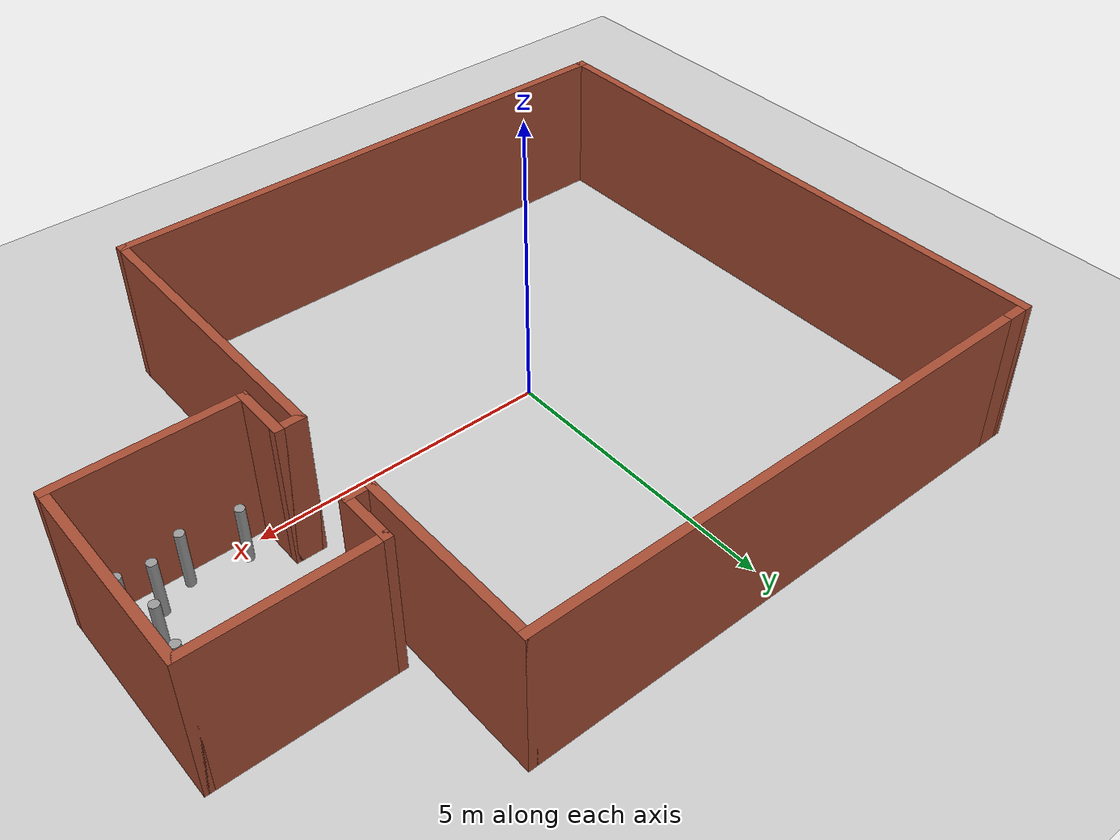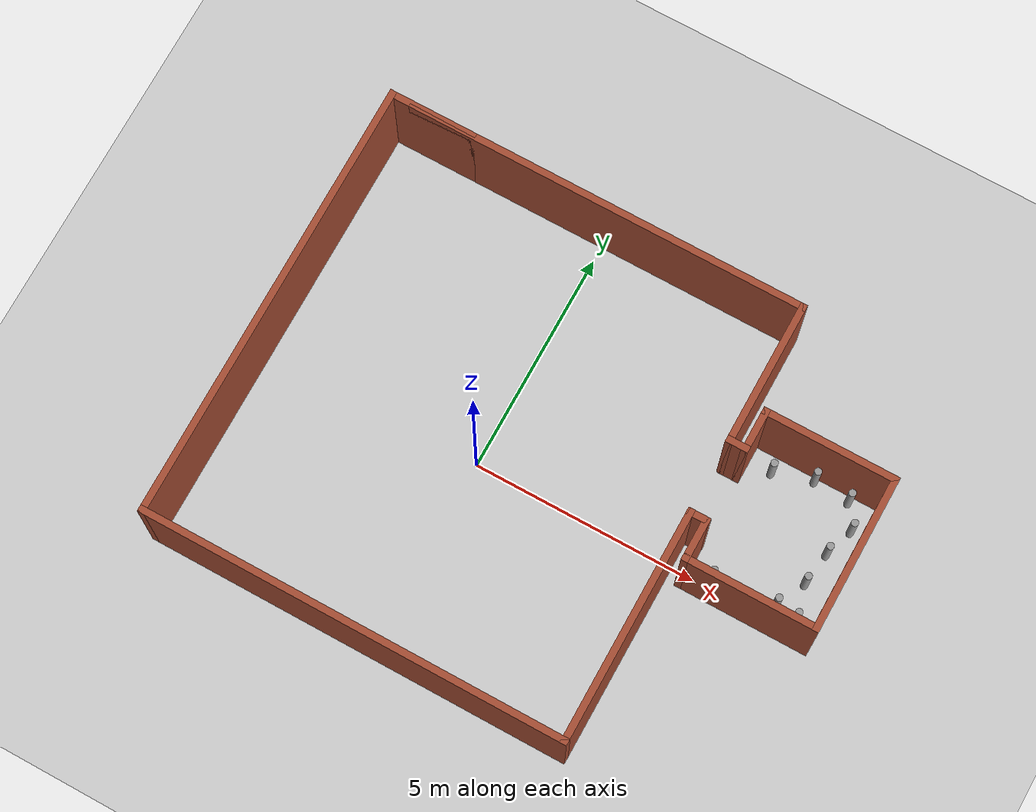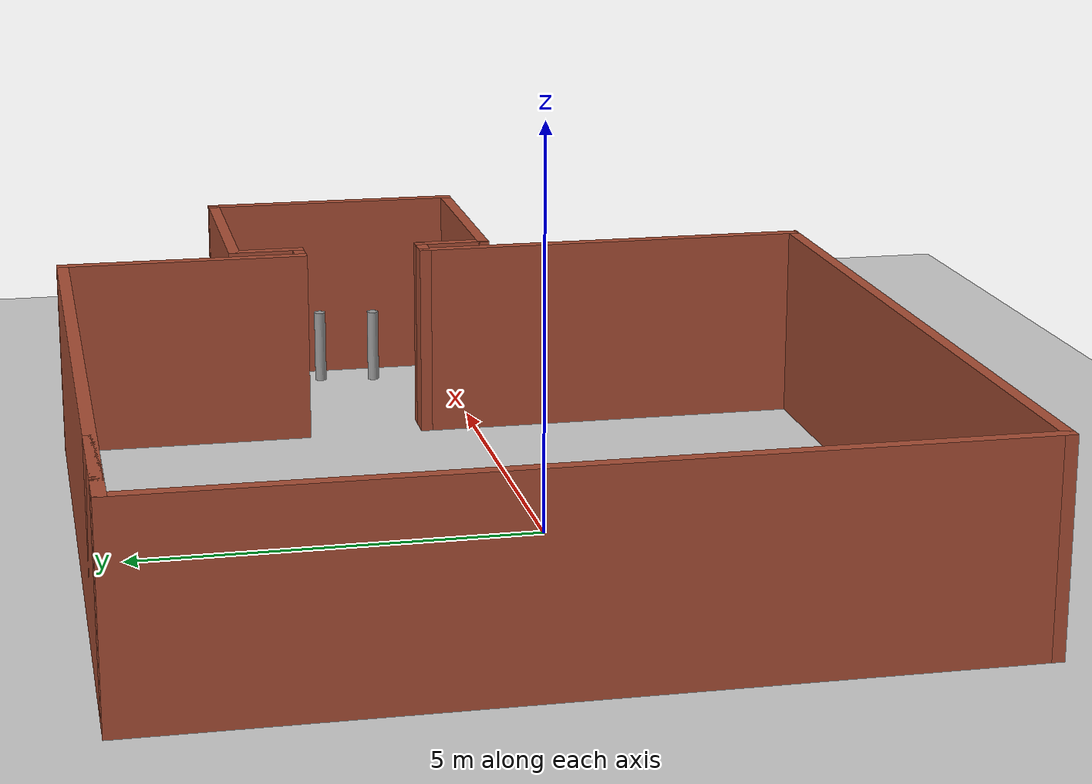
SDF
<sdf version="1.7">
 <world name="default">
  <light name="sun" type="directional">
   <pose>0 0 10 0 -0 0</pose>
   <diffuse>0.8 0.8 0.8 1</diffuse>
   <specular>0.2 0.2 0.2 1</specular>
   <attenuation>
    <range>1000</range>
    <constant>0.9</constant>
    <linear>0.01</linear>
    <quadratic>0.001</quadratic>
   </attenuation>
   <direction>-0.5 0.1 -0.9</direction>
   <spot><inner_angle>0</inner_angle><outer_angle>0</outer_angle><falloff>0</falloff></spot>
  </light>
  <model name="ground_plane">
   <static>1</static>
   <link name="link">
    <collision name="collision">
     <geometry><plane><normal>0 0 1</normal><size>100 100</size></plane></geometry>
     <surface><friction><ode><mu>100</mu><mu2>50</mu2></ode></friction></surface>
    </collision>
    <visual name="visual">
     <cast_shadows>0</cast_shadows>
     <geometry><plane><normal>0 0 1</normal><size>100 100</size></plane></geometry>
     <material>
      <script><uri>file://media/materials/scripts/gazebo.material</uri><name>Gazebo/Grey</name></script>
     </material>
    </visual>
   </link>
  </model>
  <gravity>0 0 -9.8</gravity>
  <magnetic_field>6e-06 2.3e-05 -4.2e-05</magnetic_field>
  <atmosphere type="adiabatic"/>
  <physics type="ode">
   <max_step_size>0.001</max_step_size>
   <real_time_factor>1</real_time_factor>
   <real_time_update_rate>1000</real_time_update_rate>
  </physics>
  <scene><ambient>0.4 0.4 0.4 1</ambient><background>0.7 0.7 0.7 1</background><shadows>1</shadows></scene>
  <audio><device>default</device></audio>
  <spherical_coordinates>
   <surface_model>EARTH_WGS84</surface_model>
   <latitude_deg>0</latitude_deg>
   <longitude_deg>0</longitude_deg>
   <elevation>0</elevation>
   <heading_deg>0</heading_deg>
  </spherical_coordinates>
  <model name="test1">
   <pose>1.34333 0.496147 0 0 -0 0</pose>
   <link name="Wall_16">
    <collision name="Wall_16_Collision">
     <geometry><box><size>9 0.15 2.5</size></box></geometry>
     <pose>0 0 1.25 0 -0 0</pose>
    </collision>
    <visual name="Wall_16_Visual">
     <pose>0 0 1.25 0 -0 0</pose>
     <geometry><box><size>9 0.15 2.5</size></box></geometry>
     <material>
      <script><uri>file://media/materials/scripts/gazebo.material</uri><name>Gazebo/Bricks</name></script>
      <ambient>1 1 1 1</ambient>
     </material>
     <meta><layer>0</layer></meta>
    </visual>
    <pose>-1.35 4.925 0 0 -0 0</pose>
   </link>
   <link name="Wall_17">
    <collision name="Wall_17_Collision">
     <geometry><box><size>3.25 0.15 2.5</size></box></geometry>
     <pose>0 0 1.25 0 -0 0</pose>
    </collision>
    <visual name="Wall_17_Visual">
     <pose>0 0 1.25 0 -0 0</pose>
     <geometry><box><size>3.25 0.15 2.5</size></box></geometry>
     <material>
      <script><uri>file://media/materials/scripts/gazebo.material</uri><name>Gazebo/Bricks</name></script>
      <ambient>1 1 1 1</ambient>
     </material>
     <meta><layer>0</layer></meta>
    </visual>
    <pose>3.075 3.375 0 0 -0 -1.5708</pose>
   </link>
   <link name="Wall_18">
    <collision name="Wall_18_Collision">
     <geometry><box><size>0.5 0.15 2.5</size></box></geometry>
     <pose>0 0 1.25 0 -0 0</pose>
    </collision>
    <visual name="Wall_18_Visual">
     <pose>0 0 1.25 0 -0 0</pose>
     <geometry><box><size>0.5 0.15 2.5</size></box></geometry>
     <material>
      <script><uri>file://media/materials/scripts/gazebo.material</uri><name>Gazebo/Bricks</name></script>
      <ambient>1 1 1 1</ambient>
     </material>
     <meta><layer>0</layer></meta>
    </visual>
    <pose>3.25 1.825 0 0 -0 0</pose>
   </link>
   <link name="Wall_19">
    <collision name="Wall_19_Collision">
     <geometry><box><size>1 0.15 2.5</size></box></geometry>
     <pose>0 0 1.25 0 -0 0</pose>
    </collision>
    <visual name="Wall_19_Visual">
     <pose>0 0 1.25 0 -0 0</pose>
     <geometry><box><size>1 0.15 2.5</size></box></geometry>
     <material>
      <script><uri>file://media/materials/scripts/gazebo.material</uri><name>Gazebo/Bricks</name></script>
      <ambient>1 1 1 1</ambient>
     </material>
     <meta><layer>0</layer></meta>
    </visual>
    <pose>3.425 2.25 0 0 -0 1.5708</pose>
   </link>
   <link name="Wall_20">
    <collision name="Wall_20_Collision">
     <geometry><box><size>3 0.15 2.5</size></box></geometry>
     <pose>0 0 1.25 0 -0 0</pose>
    </collision>
    <visual name="Wall_20_Visual">
     <pose>0 0 1.25 0 -0 0</pose>
     <geometry><box><size>3 0.15 2.5</size></box></geometry>
     <material>
      <script><uri>file://media/materials/scripts/gazebo.material</uri><name>Gazebo/Bricks</name></script>
      <ambient>1 1 1 1</ambient>
     </material>
     <meta><layer>0</layer></meta>
    </visual>
    <pose>4.85 2.675 0 0 -0 0</pose>
   </link>
   <link name="Wall_21">
    <collision name="Wall_21_Collision">
     <geometry><box><size>3.5 0.15 2.5</size></box></geometry>
     <pose>0 0 1.25 0 -0 0</pose>
    </collision>
    <visual name="Wall_21_Visual">
     <pose>0 0 1.25 0 -0 0</pose>
     <geometry><box><size>3.5 0.15 2.5</size></box></geometry>
     <material>
      <script><uri>file://media/materials/scripts/gazebo.material</uri><name>Gazebo/Bricks</name></script>
      <ambient>1 1 1 1</ambient>
     </material>
     <meta><layer>0</layer></meta>
    </visual>
    <pose>6.275 1 0 0 -0 -1.5708</pose>
   </link>
   <link name="Wall_27">
    <collision name="Wall_27_Collision">
     <geometry><box><size>3 0.15 2.5</size></box></geometry>
     <pose>0 0 1.25 0 -0 0</pose>
    </collision>
    <visual name="Wall_27_Visual">
     <pose>0 0 1.25 0 -0 0</pose>
     <geometry><box><size>3 0.15 2.5</size></box></geometry>
     <material>
      <script><uri>file://media/materials/scripts/gazebo.material</uri><name>Gazebo/Bricks</name></script>
      <ambient>1 1 1 1</ambient>
     </material>
     <meta><layer>0</layer></meta>
    </visual>
    <pose>4.85 -0.675 0 0 -0 3.14159</pose>
   </link>
   <link name="Wall_28">
    <collision name="Wall_28_Collision">
     <geometry><box><size>1 0.15 2.5</size></box></geometry>
     <pose>0 0 1.25 0 -0 0</pose>
    </collision>
    <visual name="Wall_28_Visual">
     <pose>0 0 1.25 0 -0 0</pose>
     <geometry><box><size>1 0.15 2.5</size></box></geometry>
     <material>
      <script><uri>file://media/materials/scripts/gazebo.material</uri><name>Gazebo/Bricks</name></script>
      <ambient>1 1 1 1</ambient>
     </material>
     <meta><layer>0</layer></meta>
    </visual>
    <pose>3.425 -0.25 0 0 -0 1.5708</pose>
   </link>
   <link name="Wall_29">
    <collision name="Wall_29_Collision">
     <geometry><box><size>0.5 0.15 2.5</size></box></geometry>
     <pose>0 0 1.25 0 -0 0</pose>
    </collision>
    <visual name="Wall_29_Visual">
     <pose>0 0 1.25 0 -0 0</pose>
     <geometry><box><size>0.5 0.15 2.5</size></box></geometry>
     <material>
      <script><uri>file://media/materials/scripts/gazebo.material</uri><name>Gazebo/Bricks</name></script>
      <ambient>1 1 1 1</ambient>
     </material>
     <meta><layer>0</layer></meta>
    </visual>
    <pose>3.25 0.175 0 0 -0 3.14159</pose>
   </link>
   <link name="Wall_30">
    <collision name="Wall_30_Collision">
     <geometry><box><size>5.25 0.15 2.5</size></box></geometry>
     <pose>0 0 1.25 0 -0 0</pose>
    </collision>
    <visual name="Wall_30_Visual">
     <pose>0 0 1.25 0 -0 0</pose>
     <geometry><box><size>5.25 0.15 2.5</size></box></geometry>
     <material>
      <script><uri>file://media/materials/scripts/gazebo.material</uri><name>Gazebo/Bricks</name></script>
      <ambient>1 1 1 1</ambient>
     </material>
     <meta><layer>0</layer></meta>
    </visual>
    <pose>3.075 -2.375 0 0 -0 -1.5708</pose>
   </link>
   <link name="Wall_31">
    <collision name="Wall_31_Collision">
     <geometry><box><size>9.5 0.15 2.5</size></box></geometry>
     <pose>0 0 1.25 0 -0 0</pose>
    </collision>
    <visual name="Wall_31_Visual">
     <pose>0 0 1.25 0 -0 0</pose>
     <geometry><box><size>9.5 0.15 2.5</size></box></geometry>
     <material>
      <script><uri>file://media/materials/scripts/gazebo.material</uri><name>Gazebo/Bricks</name></script>
      <ambient>1 1 1 1</ambient>
     </material>
     <meta><layer>0</layer></meta>
    </visual>
    <pose>-1.6 -4.925 0 0 -0 3.14159</pose>
   </link>
   <link name="Wall_32">
    <collision name="Wall_32_Collision">
     <geometry><box><size>10 0.15 2.5</size></box></geometry>
     <pose>0 0 1.25 0 -0 0</pose>
    </collision>
    <visual name="Wall_32_Visual">
     <pose>0 0 1.25 0 -0 0</pose>
     <geometry><box><size>10 0.15 2.5</size></box></geometry>
     <material>
      <script><uri>file://media/materials/scripts/gazebo.material</uri><name>Gazebo/Bricks</name></script>
      <ambient>1 1 1 1</ambient>
     </material>
     <meta><layer>0</layer></meta>
    </visual>
    <pose>-6.275 0 0 0 -0 1.5708</pose>
   </link>
   <link name="Wall_33">
    <collision name="Wall_33_Collision">
     <geometry><box><size>2 0.15 2.5</size></box></geometry>
     <pose>0 0 1.25 0 -0 0</pose>
    </collision>
    <visual name="Wall_33_Visual">
     <pose>0 0 1.25 0 -0 0</pose>
     <geometry><box><size>2 0.15 2.5</size></box></geometry>
     <material>
      <script><uri>file://media/materials/scripts/gazebo.material</uri><name>Gazebo/Bricks</name></script>
      <ambient>1 1 1 1</ambient>
     </material>
     <meta><layer>0</layer></meta>
    </visual>
    <pose>-5.35 4.925 0 0 -0 0</pose>
   </link>
   <static>1</static>
  </model>
  <model name="human">
   <link name="link_0">
    <inertial>
     <mass>0.0249343</mass>
     <inertia>
      <ixx>0.00211672</ixx>
      <ixy>0</ixy>
      <ixz>0</ixz>
      <iyy>0.00211672</iyy>
      <iyz>0</iyz>
      <izz>7.77181e-05</izz>
     </inertia>
    </inertial>
    <pose>-3e-06 0 0 0 -0 0</pose>
    <visual name="visual">
     <geometry><cylinder><radius>0.0789546</radius><length>1</length></cylinder></geometry>
     <material>
      <lighting>1</lighting>
      <script><uri>file://media/materials/scripts/gazebo.material</uri><name>Gazebo/Grey</name></script>
      <shader type="pixel"/>
     </material>
    </visual>
    <collision name="collision">
     <geometry><cylinder><radius>0.078955</radius><length>1</length></cylinder></geometry>
     <surface>
      <friction>
       <ode><mu>1</mu><mu2>1</mu2><fdir1>0 0 0</fdir1><slip1>0</slip1><slip2>0</slip2></ode>
       <torsional>
        <coefficient>1</coefficient>
        <patch_radius>0</patch_radius>
        <surface_radius>0</surface_radius>
        <use_patch_radius>1</use_patch_radius>
        <ode><slip>0</slip></ode>
       </torsional>
      </friction>
      <bounce><restitution_coefficient>0</restitution_coefficient><threshold>1e+06</threshold></bounce>
      <contact>
       <collide_without_contact>0</collide_without_contact>
       <collide_without_contact_bitmask>1</collide_without_contact_bitmask>
       <collide_bitmask>1</collide_bitmask>
       <ode>
        <soft_cfm>0</soft_cfm>
        <soft_erp>0.2</soft_erp>
        <kp>1e+13</kp>
        <kd>1</kd>
        <max_vel>0.01</max_vel>
        <min_depth>0</min_depth>
       </ode>
       <bullet>
        <split_impulse>1</split_impulse>
        <split_impulse_penetration_threshold>-0.01</split_impulse_penetration_threshold>
        <soft_cfm>0</soft_cfm>
        <soft_erp>0.2</soft_erp>
        <kp>1e+13</kp>
        <kd>1</kd>
       </bullet>
      </contact>
     </surface>
    </collision>
   </link>
   <static>1</static>
   <pose>7.17179 0.262307 0.5 0 -0 0</pose>
  </model>
  <model name="human_clone">
   <link name="link_0">
    <inertial>
     <mass>0.0249343</mass>
     <inertia>
      <ixx>0.00211672</ixx>
      <ixy>0</ixy>
      <ixz>0</ixz>
      <iyy>0.00211672</iyy>
      <iyz>0</iyz>
      <izz>7.77181e-05</izz>
     </inertia>
    </inertial>
    <pose>-3e-06 0 0 0 -0 0</pose>
    <visual name="visual">
     <geometry><cylinder><radius>0.0789546</radius><length>1</length></cylinder></geometry>
     <material>
      <lighting>1</lighting>
      <script><uri>file://media/materials/scripts/gazebo.material</uri><name>Gazebo/Grey</name></script>
      <shader type="pixel"/>
     </material>
    </visual>
    <collision name="collision">
     <geometry><cylinder><radius>0.078955</radius><length>1</length></cylinder></geometry>
     <surface>
      <friction>
       <ode><mu>1</mu><mu2>1</mu2><fdir1>0 0 0</fdir1><slip1>0</slip1><slip2>0</slip2></ode>
       <torsional>
        <coefficient>1</coefficient>
        <patch_radius>0</patch_radius>
        <surface_radius>0</surface_radius>
        <use_patch_radius>1</use_patch_radius>
        <ode><slip>0</slip></ode>
       </torsional>
      </friction>
      <bounce><restitution_coefficient>0</restitution_coefficient><threshold>1e+06</threshold></bounce>
      <contact>
       <collide_without_contact>0</collide_without_contact>
       <collide_without_contact_bitmask>1</collide_without_contact_bitmask>
       <collide_bitmask>1</collide_bitmask>
       <ode>
        <soft_cfm>0</soft_cfm>
        <soft_erp>0.2</soft_erp>
        <kp>1e+13</kp>
        <kd>1</kd>
        <max_vel>0.01</max_vel>
        <min_depth>0</min_depth>
       </ode>
       <bullet>
        <split_impulse>1</split_impulse>
        <split_impulse_penetration_threshold>-0.01</split_impulse_penetration_threshold>
        <soft_cfm>0</soft_cfm>
        <soft_erp>0.2</soft_erp>
        <kp>1e+13</kp>
        <kd>1</kd>
       </bullet>
      </contact>
     </surface>
    </collision>
   </link>
   <static>1</static>
   <pose>6.69137 0.331671 0.5 0 -0 0</pose>
  </model>
  <model name="human_clone_0">
   <link name="link_0">
    <inertial>
     <mass>0.0249343</mass>
     <inertia>
      <ixx>0.00211672</ixx>
      <ixy>0</ixy>
      <ixz>0</ixz>
      <iyy>0.00211672</iyy>
      <iyz>0</iyz>
      <izz>7.77181e-05</izz>
     </inertia>
    </inertial>
    <pose>-3e-06 0 0 0 -0 0</pose>
    <visual name="visual">
     <geometry><cylinder><radius>0.0789546</radius><length>1</length></cylinder></geometry>
     <material>
      <lighting>1</lighting>
      <script><uri>file://media/materials/scripts/gazebo.material</uri><name>Gazebo/Grey</name></script>
      <shader type="pixel"/>
     </material>
    </visual>
    <collision name="collision">
     <geometry><cylinder><radius>0.078955</radius><length>1</length></cylinder></geometry>
     <surface>
      <friction>
       <ode><mu>1</mu><mu2>1</mu2><fdir1>0 0 0</fdir1><slip1>0</slip1><slip2>0</slip2></ode>
       <torsional>
        <coefficient>1</coefficient>
        <patch_radius>0</patch_radius>
        <surface_radius>0</surface_radius>
        <use_patch_radius>1</use_patch_radius>
        <ode><slip>0</slip></ode>
       </torsional>
      </friction>
      <bounce><restitution_coefficient>0</restitution_coefficient><threshold>1e+06</threshold></bounce>
      <contact>
       <collide_without_contact>0</collide_without_contact>
       <collide_without_contact_bitmask>1</collide_without_contact_bitmask>
       <collide_bitmask>1</collide_bitmask>
       <ode>
        <soft_cfm>0</soft_cfm>
        <soft_erp>0.2</soft_erp>
        <kp>1e+13</kp>
        <kd>1</kd>
        <max_vel>0.01</max_vel>
        <min_depth>0</min_depth>
       </ode>
       <bullet>
        <split_impulse>1</split_impulse>
        <split_impulse_penetration_threshold>-0.01</split_impulse_penetration_threshold>
        <soft_cfm>0</soft_cfm>
        <soft_erp>0.2</soft_erp>
        <kp>1e+13</kp>
        <kd>1</kd>
       </bullet>
      </contact>
     </surface>
    </collision>
   </link>
   <static>1</static>
   <pose>6.15916 0.092856 0.5 0 -0 0</pose>
  </model>
  <model name="human_clone_1">
   <link name="link_0">
    <inertial>
     <mass>0.0249343</mass>
     <inertia>
      <ixx>0.00211672</ixx>
      <ixy>0</ixy>
      <ixz>0</ixz>
      <iyy>0.00211672</iyy>
      <iyz>0</iyz>
      <izz>7.77181e-05</izz>
     </inertia>
    </inertial>
    <pose>-3e-06 0 0 0 -0 0</pose>
    <visual name="visual">
     <geometry><cylinder><radius>0.0789546</radius><length>1</length></cylinder></geometry>
     <material>
      <lighting>1</lighting>
      <script><uri>file://media/materials/scripts/gazebo.material</uri><name>Gazebo/Grey</name></script>
      <shader type="pixel"/>
     </material>
    </visual>
    <collision name="collision">
     <geometry><cylinder><radius>0.078955</radius><length>1</length></cylinder></geometry>
     <surface>
      <friction>
       <ode><mu>1</mu><mu2>1</mu2><fdir1>0 0 0</fdir1><slip1>0</slip1><slip2>0</slip2></ode>
       <torsional>
        <coefficient>1</coefficient>
        <patch_radius>0</patch_radius>
        <surface_radius>0</surface_radius>
        <use_patch_radius>1</use_patch_radius>
        <ode><slip>0</slip></ode>
       </torsional>
      </friction>
      <bounce><restitution_coefficient>0</restitution_coefficient><threshold>1e+06</threshold></bounce>
      <contact>
       <collide_without_contact>0</collide_without_contact>
       <collide_without_contact_bitmask>1</collide_without_contact_bitmask>
       <collide_bitmask>1</collide_bitmask>
       <ode>
        <soft_cfm>0</soft_cfm>
        <soft_erp>0.2</soft_erp>
        <kp>1e+13</kp>
        <kd>1</kd>
        <max_vel>0.01</max_vel>
        <min_depth>0</min_depth>
       </ode>
       <bullet>
        <split_impulse>1</split_impulse>
        <split_impulse_penetration_threshold>-0.01</split_impulse_penetration_threshold>
        <soft_cfm>0</soft_cfm>
        <soft_erp>0.2</soft_erp>
        <kp>1e+13</kp>
        <kd>1</kd>
       </bullet>
      </contact>
     </surface>
    </collision>
   </link>
   <static>1</static>
   <pose>5.29789 0.209136 0.5 0 -0 0</pose>
  </model>
  <model name="human_clone_2">
   <link name="link_0">
    <inertial>
     <mass>0.0249343</mass>
     <inertia>
      <ixx>0.00211672</ixx>
      <ixy>0</ixy>
      <ixz>0</ixz>
      <iyy>0.00211672</iyy>
      <iyz>0</iyz>
      <izz>7.77181e-05</izz>
     </inertia>
    </inertial>
    <pose>-3e-06 0 0 0 -0 0</pose>
    <visual name="visual">
     <geometry><cylinder><radius>0.0789546</radius><length>1</length></cylinder></geometry>
     <material>
      <lighting>1</lighting>
      <script><uri>file://media/materials/scripts/gazebo.material</uri><name>Gazebo/Grey</name></script>
      <shader type="pixel"/>
     </material>
    </visual>
    <collision name="collision">
     <geometry><cylinder><radius>0.078955</radius><length>1</length></cylinder></geometry>
     <surface>
      <friction>
       <ode><mu>1</mu><mu2>1</mu2><fdir1>0 0 0</fdir1><slip1>0</slip1><slip2>0</slip2></ode>
       <torsional>
        <coefficient>1</coefficient>
        <patch_radius>0</patch_radius>
        <surface_radius>0</surface_radius>
        <use_patch_radius>1</use_patch_radius>
        <ode><slip>0</slip></ode>
       </torsional>
      </friction>
      <bounce><restitution_coefficient>0</restitution_coefficient><threshold>1e+06</threshold></bounce>
      <contact>
       <collide_without_contact>0</collide_without_contact>
       <collide_without_contact_bitmask>1</collide_without_contact_bitmask>
       <collide_bitmask>1</collide_bitmask>
       <ode>
        <soft_cfm>0</soft_cfm>
        <soft_erp>0.2</soft_erp>
        <kp>1e+13</kp>
        <kd>1</kd>
        <max_vel>0.01</max_vel>
        <min_depth>0</min_depth>
       </ode>
       <bullet>
        <split_impulse>1</split_impulse>
        <split_impulse_penetration_threshold>-0.01</split_impulse_penetration_threshold>
        <soft_cfm>0</soft_cfm>
        <soft_erp>0.2</soft_erp>
        <kp>1e+13</kp>
        <kd>1</kd>
       </bullet>
      </contact>
     </surface>
    </collision>
   </link>
   <static>1</static>
   <pose>5.33715 2.7245 0.5 0 -0 0</pose>
  </model>
  <model name="human_clone_3">
   <link name="link_0">
    <inertial>
     <mass>0.0249343</mass>
     <inertia>
      <ixx>0.00211672</ixx>
      <ixy>0</ixy>
      <ixz>0</ixz>
      <iyy>0.00211672</iyy>
      <iyz>0</iyz>
      <izz>7.77181e-05</izz>
     </inertia>
    </inertial>
    <pose>-3e-06 0 0 0 -0 0</pose>
    <visual name="visual">
     <geometry><cylinder><radius>0.0789546</radius><length>1</length></cylinder></geometry>
     <material>
      <lighting>1</lighting>
      <script><uri>file://media/materials/scripts/gazebo.material</uri><name>Gazebo/Grey</name></script>
      <shader type="pixel"/>
     </material>
    </visual>
    <collision name="collision">
     <geometry><cylinder><radius>0.078955</radius><length>1</length></cylinder></geometry>
     <surface>
      <friction>
       <ode><mu>1</mu><mu2>1</mu2><fdir1>0 0 0</fdir1><slip1>0</slip1><slip2>0</slip2></ode>
       <torsional>
        <coefficient>1</coefficient>
        <patch_radius>0</patch_radius>
        <surface_radius>0</surface_radius>
        <use_patch_radius>1</use_patch_radius>
        <ode><slip>0</slip></ode>
       </torsional>
      </friction>
      <bounce><restitution_coefficient>0</restitution_coefficient><threshold>1e+06</threshold></bounce>
      <contact>
       <collide_without_contact>0</collide_without_contact>
       <collide_without_contact_bitmask>1</collide_without_contact_bitmask>
       <collide_bitmask>1</collide_bitmask>
       <ode>
        <soft_cfm>0</soft_cfm>
        <soft_erp>0.2</soft_erp>
        <kp>1e+13</kp>
        <kd>1</kd>
        <max_vel>0.01</max_vel>
        <min_depth>0</min_depth>
       </ode>
       <bullet>
        <split_impulse>1</split_impulse>
        <split_impulse_penetration_threshold>-0.01</split_impulse_penetration_threshold>
        <soft_cfm>0</soft_cfm>
        <soft_erp>0.2</soft_erp>
        <kp>1e+13</kp>
        <kd>1</kd>
       </bullet>
      </contact>
     </surface>
    </collision>
   </link>
   <static>1</static>
   <pose>6.18947 2.9909 0.5 0 -0 0</pose>
  </model>
  <model name="human_clone_4">
   <link name="link_0">
    <inertial>
     <mass>0.0249343</mass>
     <inertia>
      <ixx>0.00211672</ixx>
      <ixy>0</ixy>
      <ixz>0</ixz>
      <iyy>0.00211672</iyy>
      <iyz>0</iyz>
      <izz>7.77181e-05</izz>
     </inertia>
    </inertial>
    <pose>-3e-06 0 0 0 -0 0</pose>
    <visual name="visual">
     <geometry><cylinder><radius>0.0789546</radius><length>1</length></cylinder></geometry>
     <material>
      <lighting>1</lighting>
      <script><uri>file://media/materials/scripts/gazebo.material</uri><name>Gazebo/Grey</name></script>
      <shader type="pixel"/>
     </material>
    </visual>
    <collision name="collision">
     <geometry><cylinder><radius>0.078955</radius><length>1</length></cylinder></geometry>
     <surface>
      <friction>
       <ode><mu>1</mu><mu2>1</mu2><fdir1>0 0 0</fdir1><slip1>0</slip1><slip2>0</slip2></ode>
       <torsional>
        <coefficient>1</coefficient>
        <patch_radius>0</patch_radius>
        <surface_radius>0</surface_radius>
        <use_patch_radius>1</use_patch_radius>
        <ode><slip>0</slip></ode>
       </torsional>
      </friction>
      <bounce><restitution_coefficient>0</restitution_coefficient><threshold>1e+06</threshold></bounce>
      <contact>
       <collide_without_contact>0</collide_without_contact>
       <collide_without_contact_bitmask>1</collide_without_contact_bitmask>
       <collide_bitmask>1</collide_bitmask>
       <ode>
        <soft_cfm>0</soft_cfm>
        <soft_erp>0.2</soft_erp>
        <kp>1e+13</kp>
        <kd>1</kd>
        <max_vel>0.01</max_vel>
        <min_depth>0</min_depth>
       </ode>
       <bullet>
        <split_impulse>1</split_impulse>
        <split_impulse_penetration_threshold>-0.01</split_impulse_penetration_threshold>
        <soft_cfm>0</soft_cfm>
        <soft_erp>0.2</soft_erp>
        <kp>1e+13</kp>
        <kd>1</kd>
       </bullet>
      </contact>
     </surface>
    </collision>
   </link>
   <static>1</static>
   <pose>6.99346 2.9306 0.5 0 -0 0</pose>
  </model>
  <model name="human_clone_5">
   <link name="link_0">
    <inertial>
     <mass>0.0249343</mass>
     <inertia>
      <ixx>0.00211672</ixx>
      <ixy>0</ixy>
      <ixz>0</ixz>
      <iyy>0.00211672</iyy>
      <iyz>0</iyz>
      <izz>7.77181e-05</izz>
     </inertia>
    </inertial>
    <pose>-3e-06 0 0 0 -0 0</pose>
    <visual name="visual">
     <geometry><cylinder><radius>0.0789546</radius><length>1</length></cylinder></geometry>
     <material>
      <lighting>1</lighting>
      <script><uri>file://media/materials/scripts/gazebo.material</uri><name>Gazebo/Grey</name></script>
      <shader type="pixel"/>
     </material>
    </visual>
    <collision name="collision">
     <geometry><cylinder><radius>0.078955</radius><length>1</length></cylinder></geometry>
     <surface>
      <friction>
       <ode><mu>1</mu><mu2>1</mu2><fdir1>0 0 0</fdir1><slip1>0</slip1><slip2>0</slip2></ode>
       <torsional>
        <coefficient>1</coefficient>
        <patch_radius>0</patch_radius>
        <surface_radius>0</surface_radius>
        <use_patch_radius>1</use_patch_radius>
        <ode><slip>0</slip></ode>
       </torsional>
      </friction>
      <bounce><restitution_coefficient>0</restitution_coefficient><threshold>1e+06</threshold></bounce>
      <contact>
       <collide_without_contact>0</collide_without_contact>
       <collide_without_contact_bitmask>1</collide_without_contact_bitmask>
       <collide_bitmask>1</collide_bitmask>
       <ode>
        <soft_cfm>0</soft_cfm>
        <soft_erp>0.2</soft_erp>
        <kp>1e+13</kp>
        <kd>1</kd>
        <max_vel>0.01</max_vel>
        <min_depth>0</min_depth>
       </ode>
       <bullet>
        <split_impulse>1</split_impulse>
        <split_impulse_penetration_threshold>-0.01</split_impulse_penetration_threshold>
        <soft_cfm>0</soft_cfm>
        <soft_erp>0.2</soft_erp>
        <kp>1e+13</kp>
        <kd>1</kd>
       </bullet>
      </contact>
     </surface>
    </collision>
   </link>
   <static>1</static>
   <pose>7.31442 2.40515 0.5 0 -0 0</pose>
  </model>
  <model name="human_clone_6">
   <link name="link_0">
    <inertial>
     <mass>0.0249343</mass>
     <inertia>
      <ixx>0.00211672</ixx>
      <ixy>0</ixy>
      <ixz>0</ixz>
      <iyy>0.00211672</iyy>
      <iyz>0</iyz>
      <izz>7.77181e-05</izz>
     </inertia>
    </inertial>
    <pose>-3e-06 0 0 0 -0 0</pose>
    <visual name="visual">
     <geometry><cylinder><radius>0.0789546</radius><length>1</length></cylinder></geometry>
     <material>
      <lighting>1</lighting>
      <script><uri>file://media/materials/scripts/gazebo.material</uri><name>Gazebo/Grey</name></script>
      <shader type="pixel"/>
     </material>
    </visual>
    <collision name="collision">
     <geometry><cylinder><radius>0.078955</radius><length>1</length></cylinder></geometry>
     <surface>
      <friction>
       <ode><mu>1</mu><mu2>1</mu2><fdir1>0 0 0</fdir1><slip1>0</slip1><slip2>0</slip2></ode>
       <torsional>
        <coefficient>1</coefficient>
        <patch_radius>0</patch_radius>
        <surface_radius>0</surface_radius>
        <use_patch_radius>1</use_patch_radius>
        <ode><slip>0</slip></ode>
       </torsional>
      </friction>
      <bounce><restitution_coefficient>0</restitution_coefficient><threshold>1e+06</threshold></bounce>
      <contact>
       <collide_without_contact>0</collide_without_contact>
       <collide_without_contact_bitmask>1</collide_without_contact_bitmask>
       <collide_bitmask>1</collide_bitmask>
       <ode>
        <soft_cfm>0</soft_cfm>
        <soft_erp>0.2</soft_erp>
        <kp>1e+13</kp>
        <kd>1</kd>
        <max_vel>0.01</max_vel>
        <min_depth>0</min_depth>
       </ode>
       <bullet>
        <split_impulse>1</split_impulse>
        <split_impulse_penetration_threshold>-0.01</split_impulse_penetration_threshold>
        <soft_cfm>0</soft_cfm>
        <soft_erp>0.2</soft_erp>
        <kp>1e+13</kp>
        <kd>1</kd>
       </bullet>
      </contact>
     </surface>
    </collision>
   </link>
   <static>1</static>
   <pose>7.10196 1.74941 0.5 0 -0 0</pose>
  </model>
  <model name="human_clone_7">
   <link name="link_0">
    <inertial>
     <mass>0.0249343</mass>
     <inertia>
      <ixx>0.00211672</ixx>
      <ixy>0</ixy>
      <ixz>0</ixz>
      <iyy>0.00211672</iyy>
      <iyz>0</iyz>
      <izz>7.77181e-05</izz>
     </inertia>
    </inertial>
    <pose>-3e-06 0 0 0 -0 0</pose>
    <visual name="visual">
     <geometry><cylinder><radius>0.0789546</radius><length>1</length></cylinder></geometry>
     <material>
      <lighting>1</lighting>
      <script><uri>file://media/materials/scripts/gazebo.material</uri><name>Gazebo/Grey</name></script>
      <shader type="pixel"/>
     </material>
    </visual>
    <collision name="collision">
     <geometry><cylinder><radius>0.078955</radius><length>1</length></cylinder></geometry>
     <surface>
      <friction>
       <ode><mu>1</mu><mu2>1</mu2><fdir1>0 0 0</fdir1><slip1>0</slip1><slip2>0</slip2></ode>
       <torsional>
        <coefficient>1</coefficient>
        <patch_radius>0</patch_radius>
        <surface_radius>0</surface_radius>
        <use_patch_radius>1</use_patch_radius>
        <ode><slip>0</slip></ode>
       </torsional>
      </friction>
      <bounce><restitution_coefficient>0</restitution_coefficient><threshold>1e+06</threshold></bounce>
      <contact>
       <collide_without_contact>0</collide_without_contact>
       <collide_without_contact_bitmask>1</collide_without_contact_bitmask>
       <collide_bitmask>1</collide_bitmask>
       <ode>
        <soft_cfm>0</soft_cfm>
        <soft_erp>0.2</soft_erp>
        <kp>1e+13</kp>
        <kd>1</kd>
        <max_vel>0.01</max_vel>
        <min_depth>0</min_depth>
       </ode>
       <bullet>
        <split_impulse>1</split_impulse>
        <split_impulse_penetration_threshold>-0.01</split_impulse_penetration_threshold>
        <soft_cfm>0</soft_cfm>
        <soft_erp>0.2</soft_erp>
        <kp>1e+13</kp>
        <kd>1</kd>
       </bullet>
      </contact>
     </surface>
    </collision>
   </link>
   <static>1</static>
   <pose>7 1 0.5 0 -0 0</pose>
  </model>
 </world>
</sdf>
